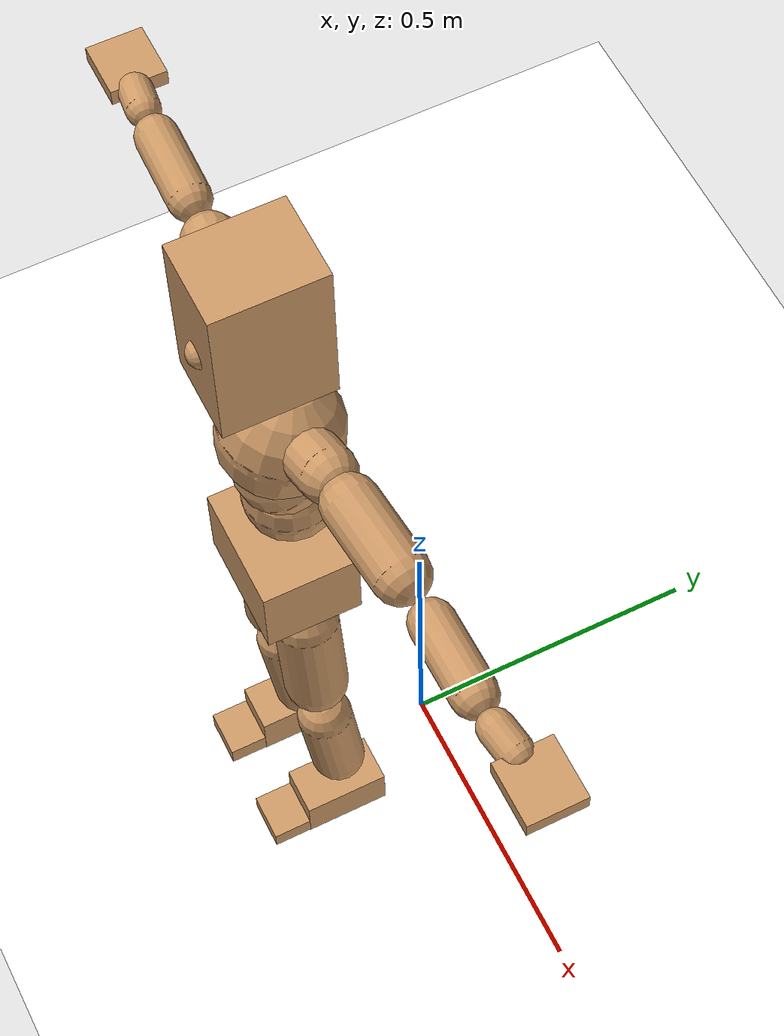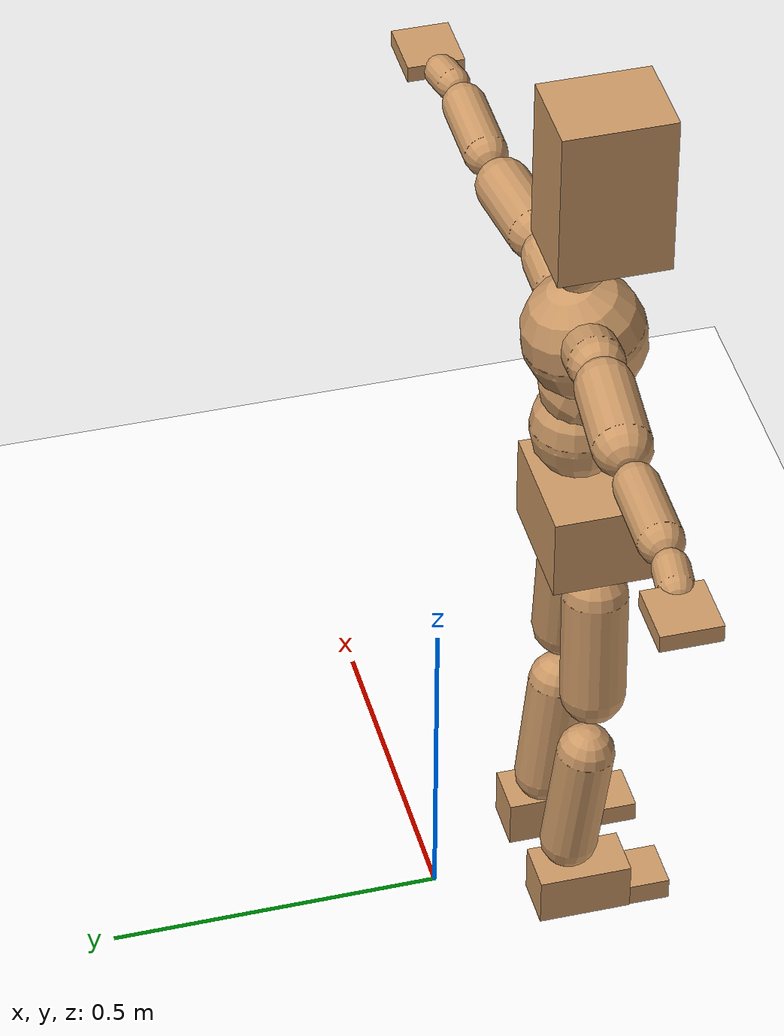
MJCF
<mujoco model="humanoid">
  <option integrator="implicitfast" />

  <visual>
    <global offwidth="1280" offheight="960" />
    <headlight active="1" ambient="0.34 0.34 0.34" diffuse="0.5 0.5 0.5" />
  </visual>

  <default>
    <joint damping="2" stiffness="2" armature="0.01" limited="true" solimplimit="0 .99 .01" />
    <geom condim="1" friction="0.7 0.005 0.0001" solimp=".99 .99 .003" solref="0.015 1" margin="0.001" rgba="0.8 0.6 .4 1" />
    <default class="smplcontact">
      <geom condim="3" friction="1. 0.005 0.0001" solref="0.015 1" solimp="0.98 0.98 0.001" priority="1" />
    </default>
    <default class="stiff_medium">
      <joint stiffness="10" />
    </default>
    <default class="stiff_medium_higher">
      <joint stiffness="50" />
    </default>
    <default class="stiff_high">
      <joint stiffness="100" />
    </default>
  </default>

  <asset>
    <texture type="skybox" builtin="gradient" rgb1="0.99 0.99 0.99" rgb2="0.608 0.828 0.892" width="100" />
    <texture builtin="flat" height="1278" mark="cross" markrgb="1 1 1" name="texgeom" random="0.01" rgb1="0.8 0.6 0.4" rgb2="0.8 0.6 0.4" type="cube" width="127" />
    <texture name="texplane" type="2d" builtin="checker" markrgb="1 1 1" rgb1="0.756 0.772 0.76" rgb2="0.6 0.6 0.6" width="100" height="100" />
    <material name="MatPlane" reflectance="0.5" texture="texplane" texrepeat="1 1" texuniform="true" />
    <material name="geom" texture="texgeom" texuniform="true" />
  </asset>

  <worldbody>
    <light name="tracking_light" pos="0 0 7" dir="0 0 -1" directional="true" cutoff="100" exponent="1" diffuse="1 1 1" specular="0.1 0.1 0.1" mode="trackcom" />
    <camera name="back" pos="0 3 2.4" xyaxes="-1 0 0 0 -1 2" mode="trackcom" />
    <camera name="side" pos="-3 0 2.4" xyaxes="0 -1 0 1 0 2" mode="trackcom" />
    <camera name="front_side" pos="-2.8 -2.8 0.8" xyaxes="0.5 -0.5 0 0.1 0.1 1" mode="trackcom" />
    <geom condim="3" name="floor" pos="0 0 0" rgba="1 1 1 1" size="100 100 .2" type="plane" material="MatPlane" />
    <body name="Pelvis" pos="-0.0018 -0.2233 0.716624" euler="90 0 0">
      <site name="Pelvis" size="0.01" />
      <freejoint name="Pelvis" />
      <geom type="box" pos="-0.0000 -0.0121 -0.0055" size="0.0968728 0.0654276 0.0752146" quat="1.0000 0.0000 0.0000 0.0000" density="3165.830099" name="Pelvis" />
      <body name="L_Hip" pos="0.0529937 -0.0696925 -0.005185">
        <joint name="L_Hip_x" type="hinge" pos="0 0 0" axis="1 0 0" stiffness="3.9214625000000005" range="-160.0 22.92" class="stiff_medium" damping="5.1597762005900805" armature="0.0030173879079468504"/>
        <joint name="L_Hip_y" type="hinge" pos="0 0 0" axis="0 1 0" stiffness="3.9279813000000003" range="-70.0 70.0" class="stiff_medium" damping="3.5718430799567584" armature="0.003247994838426288"/>
        <joint name="L_Hip_z" type="hinge" pos="0 0 0" axis="0 0 1" stiffness="3.9266735999999995" range="-28.65 90.0" class="stiff_medium" damping="3.4419389690719715" armature="0.003017043195751291"/>
        <geom type="capsule" density="2040.816327" fromto="0.00526125 -0.0571875 -0.00068625 0.0208925 -0.228903 -0.002745" size="0.0499687" name="L_Hip" />
        <body name="L_Knee" pos="0.0261537 -0.28609 -0.00343125">
          <joint name="L_Knee_x" type="hinge" pos="0 0 0" axis="1 0 0" range="-5.16 171.89" damping="2.779055997264303" armature="0.003055540941866403" stiffness="0.78987162"/>
          <joint name="L_Knee_y" type="hinge" pos="0 0 0" axis="0 1 0" range="-4.58 6.88" damping="2.876861501482273" armature="0.0032886345952017437" stiffness="0.7864521600000001"/>
          <joint name="L_Knee_z" type="hinge" pos="0 0 0" axis="0 0 1" range="-6.88 4.58" damping="2.7820708840275157" armature="0.0030538414317112733" stiffness="0.7920268800000001"/>
          <geom type="capsule" density="1234.567901" fromto="-0.00205875 -0.060695 -0.00663375 -0.00831125 -0.24278 -0.0266875" size="0.0439563" name="L_Knee" />
          <body name="L_Ankle" pos="-0.01037 -0.303475 -0.0333212">
            <joint name="L_Ankle_x" type="hinge" pos="0 0 0" axis="1 0 0" range="-45.84 45.84" class="stiff_medium" damping="2.1919054100191886" armature="0.0032631036516578937" stiffness="4.089877"/>
            <joint name="L_Ankle_y" type="hinge" pos="0 0 0" axis="0 1 0" range="-74.48 22.92" class="stiff_medium" damping="1.0976876200555323" armature="0.0032734403042531286" stiffness="4.089880299999999"/>
            <joint name="L_Ankle_z" type="hinge" pos="0 0 0" axis="0 0 1" range="-4.58 4.58" class="stiff_medium" damping="2.2179514456621963" armature="0.0033411088163127316" stiffness="4.089883599999999"/>
            <geom type="box" pos="0.0177663 -0.0182238 0.0184525" size="0.0392438 0.0377 0.0690625" quat="1.0000 0.0000 0.0000 0.0000" density="449.071558" name="L_Ankle" class="smplcontact" />
            <body name="L_Toe" pos="0.02013 -0.0425475 0.0909662">
              <joint name="L_Toe_x" type="hinge" pos="0 0 0" axis="1 0 0" range="-91.67 22.92" armature="0.0033803365718881183" damping="0.7436442223096881" stiffness="0.8179758399999999"/>
              <joint name="L_Toe_y" type="hinge" pos="0 0 0" axis="0 1 0" range="-4.58 4.58" armature="0.0034277794523945816" damping="0.7488444278599581" stiffness="0.8179755799999998"/>
              <joint name="L_Toe_z" type="hinge" pos="0 0 0" axis="0 0 1" range="-4.58 4.58" armature="0.003523704954170559" damping="0.7592495026251527" stiffness="0.8179739999999999"/>
              <geom type="box" pos="-0.0022875 0.00419375 0.01891" size="0.0388375 0.01625 0.0403" quat="1.0000 0.0000 0.0000 0.0000" density="423.206892" name="L_Toe" class="smplcontact" />
            </body>
          </body>
        </body>
      </body>
      <body name="R_Hip" pos="-0.0516212 -0.0690062 -0.00327875">
        <joint name="R_Hip_x" type="hinge" pos="0 0 0" axis="1 0 0" stiffness="3.9214625000000005" range="-160.0 22.92" class="stiff_medium" damping="5.1597762005900805" armature="0.0030173879079468504"/>
        <joint name="R_Hip_y" type="hinge" pos="0 0 0" axis="0 1 0" stiffness="3.9279813000000003" range="-70.0 70.0" class="stiff_medium" damping="3.5718430799567584" armature="0.003247994838426288"/>
        <joint name="R_Hip_z" type="hinge" pos="0 0 0" axis="0 0 1" stiffness="3.9266735999999995" range="-90.0 28.65" class="stiff_medium" damping="3.4419389690719715" armature="0.003017043195751291"/>
        <geom type="capsule" density="2040.816327" fromto="-0.00587125 -0.0583312 -0.0013725 -0.0233325 -0.233401 -0.00541375" size="0.0492375" name="R_Hip" />
        <body name="R_Knee" pos="-0.0292038 -0.291733 -0.00678625">
          <joint name="R_Knee_x" type="hinge" pos="0 0 0" axis="1 0 0" range="-5.16 171.89" damping="2.779055997264303" armature="0.003055540941866403" stiffness="0.78987162"/>
          <joint name="R_Knee_y" type="hinge" pos="0 0 0" axis="0 1 0" range="-6.88 4.58" damping="2.876861501482273" armature="0.0032886345952017437" stiffness="0.7864521600000001"/>
          <joint name="R_Knee_z" type="hinge" pos="0 0 0" axis="0 0 1" range="-4.58 6.88" damping="2.7820708840275157" armature="0.0030538414317112733" stiffness="0.7920268800000001"/>
          <geom type="capsule" density="1234.567901" fromto="0.00244 -0.0607712 -0.00648125 0.0096075 -0.243009 -0.0257725" size="0.0439563" name="R_Knee" />
          <body name="R_Ankle" pos="0.0120475 -0.30378 -0.0322537">
            <joint name="R_Ankle_x" type="hinge" pos="0 0 0" axis="1 0 0" range="-45.84 45.84" class="stiff_medium" damping="2.1919054100191886" armature="0.0032631036516578937" stiffness="4.089877"/>
            <joint name="R_Ankle_y" type="hinge" pos="0 0 0" axis="0 1 0" range="-22.92 74.48" class="stiff_medium" damping="1.0976876200555323" armature="0.0032734403042531286" stiffness="4.089880299999999"/>
            <joint name="R_Ankle_z" type="hinge" pos="0 0 0" axis="0 0 1" range="-4.58 4.58" class="stiff_medium" damping="2.2179514456621963" armature="0.0033411088163127316" stiffness="4.089883599999999"/>
            <geom type="box" pos="-0.016165 -0.0132675 0.01952" size="0.0392438 0.0388375 0.0702812" quat="1.0000 0.0000 0.0000 0.0000" density="434.700981" name="R_Ankle" class="smplcontact" />
            <body name="R_Toe" pos="-0.0193675 -0.0366762 0.0940162">
              <joint name="R_Toe_x" type="hinge" pos="0 0 0" axis="1 0 0" range="-91.67 22.92" armature="0.0033803365718881183" damping="0.7436442223096881" stiffness="0.8179758399999999"/>
              <joint name="R_Toe_y" type="hinge" pos="0 0 0" axis="0 1 0" range="-4.58 4.58" armature="0.0034277794523945816" damping="0.7488444278599581" stiffness="0.8179755799999998"/>
              <joint name="R_Toe_z" type="hinge" pos="0 0 0" axis="0 0 1" range="-4.58 4.58" armature="0.003523704954170559" damping="0.7592495026251527" stiffness="0.8179739999999999"/>
              <geom type="box" pos="0.0032025 0.00343125 0.0173088" size="0.0389188 0.01755 0.0400562" quat="1.0000 0.0000 0.0000 0.0000" density="407.384095" name="R_Toe" class="smplcontact" />
            </body>
          </body>
        </body>
      </body>
      <body name="Torso" pos="-0.0021095 0.0919742 -0.0225295">
        <joint name="Torso_x" type="hinge" pos="0 0 0" axis="1 0 0" range="-25.78 57.3" class="stiff_medium" damping="10.577258012093274" armature="0.006904570092515205" stiffness="7.2015675"/>
        <joint name="Torso_y" type="hinge" pos="0 0 0" axis="0 1 0" range="-57.3 57.3" class="stiff_high" damping="10.129493129551967" armature="0.0034222465397277624" stiffness="74.95561020408162"/>
        <joint name="Torso_z" type="hinge" pos="0 0 0" axis="0 0 1" range="-34.38 34.38" class="stiff_high" damping="12.711820879686218" armature="0.005697958674021908" stiffness="70.89836875"/>
        <geom type="capsule" density="2040.816327" fromto="0.0021095 0.051303 0.0004219 0.0025314 0.0626943 0.00050628" size="0.0696868" name="Torso" />
        <body name="Spine" pos="0.0046409 0.114082 0.00092818">
          <joint name="Spine_x" type="hinge" pos="0 0 0" axis="1 0 0" stiffness="7.4422838" range="-25.78 57.3" class="stiff_medium" damping="11.567419134205927" armature="0.007990688463213307"/>
          <joint name="Spine_y" type="hinge" pos="0 0 0" axis="0 1 0" stiffness="7.820228181818183" range="-57.3 57.3" class="stiff_high" damping="4.126954384192684" armature="0.00340298424108119"/>
          <joint name="Spine_z" type="hinge" pos="0 0 0" axis="0 0 1" stiffness="15.870546222222224" range="-34.38 34.38" class="stiff_high" damping="7.889511611505526" armature="0.005447231952382052"/>
          <geom type="capsule" density="2040.816327" fromto="0.00059066 0.0200824 0.00961932 0.00067504 0.0245546 0.0118132" size="0.0684181" name="Spine" />
          <body name="Chest" pos="0.0012657 0.044637 0.0214325">
            <joint name="Chest_x" type="hinge" pos="0 0 0" axis="1 0 0" stiffness="7.979542558139535" range="-25.78 57.3" class="stiff_medium" damping="12.413924505472188" armature="0.008583367084836072"/>
            <joint name="Chest_y" type="hinge" pos="0 0 0" axis="0 1 0" stiffness="7.157162692307692" range="-57.3 57.3" class="stiff_high" damping="3.9311004580490834" armature="0.0033737074565269804"/>
            <joint name="Chest_z" type="hinge" pos="0 0 0" axis="0 0 1" stiffness="16.578240487804877" range="-34.38 34.38" class="stiff_high" damping="7.915635023672763" armature="0.00524929029997737"/>
            <geom type="capsule" density="2040.816327" fromto="-0.00075942 0.0575472 -0.0145977 -0.0008438 0.0702885 -0.0178886" size="0.0908012" name="Chest" />
            <body name="Neck" pos="-0.00236264 0.180489 -0.036199">
              <joint name="Neck_x" type="hinge" pos="0 0 0" axis="1 0 0" range="-28.65 57.3" class="stiff_medium_higher" damping="13.55561732579099" armature="0.014136356199346856" stiffness="64.99367959183672"/>
              <joint name="Neck_y" type="hinge" pos="0 0 0" axis="0 1 0" range="-40.11 40.11" class="stiff_medium_higher" damping="13.792446993211637" armature="0.01457266759645728" stiffness="65.26999699999999"/>
              <joint name="Neck_z" type="hinge" pos="0 0 0" axis="0 0 1" range="-40.11 40.11" class="stiff_medium_higher" damping="13.685552764196004" armature="0.014152711503354256" stiffness="66.16907099999999"/>
              <geom type="capsule" density="1000" fromto="0.0008438 0.0109694 0.00869114 0.00345958 0.0438776 0.0346802" size="0.0395103" name="Neck" />
              <body name="Head" pos="0.00536224 0.067028 0.0529006">
                <joint name="Head_x" type="hinge" pos="0 0 0" axis="1 0 0" range="-28.65 57.3" class="stiff_medium_higher" damping="2.816621340013433" armature="0.014697337086109404" stiffness="67.472731"/>
                <joint name="Head_y" type="hinge" pos="0 0 0" axis="0 1 0" range="-40.11 40.11" class="stiff_medium_higher" damping="2.8996056421846865" armature="0.015576134886874772" stiffness="67.47271500000001"/>
                <joint name="Head_z" type="hinge" pos="0 0 0" axis="0 0 1" range="-40.11 40.11" class="stiff_medium_higher" damping="2.8124493462793527" armature="0.014653825882704061" stiffness="67.47274900000002"/>
                <geom type="box" pos="-0.00433104 0.0903331 -0.0119619" size="0.0662843 0.126225 0.0831288" quat="1.0000 0.0000 0.0000 0.0000" density="1018.069894" name="Head" />
                <geom type="capsule" name="nose" size="0.021876 0.010938" pos="0 0.072184 0.05156" quat="1 0 0 0" mass="0" contype="0" conaffinity="0" />
              </body>
            </body>
            <body name="L_Thorax" pos="0.0615586 0.095072 -0.0266389">
              <joint name="L_Thorax_x" type="hinge" pos="0 0 0" axis="1 0 0" range="-10.89 4.58" class="stiff_medium_higher" damping="7.366703641788815" armature="0.003315867709050664" stiffness="20.4578135"/>
              <joint name="L_Thorax_y" type="hinge" pos="0 0 0" axis="0 1 0" range="-28.65 17.19" class="stiff_medium_higher" damping="7.2389737977142214" armature="0.003204940921472673" stiffness="20.438263500000005"/>
              <joint name="L_Thorax_z" type="hinge" pos="0 0 0" axis="0 0 1" range="-31.51 40.11" class="stiff_medium_higher" damping="7.238926075629938" armature="0.0032048407254312863" stiffness="20.438633"/>
              <geom type="capsule" density="1000" fromto="0.0142178 0.00476532 -0.00140616 0.0568714 0.0190613 -0.00554652" size="0.0423313" name="L_Thorax" />
              <body name="L_Shoulder" pos="0.0710892 0.0238266 -0.00695268">
                <joint name="L_Shoulder_x" type="hinge" pos="0 0 0" axis="1 0 0" range="-97.4 97.4" class="stiff_medium" damping="2.2249706482116145" armature="0.0033592827176513406" stiffness="4.0935445"/>
                <joint name="L_Shoulder_y" type="hinge" pos="0 0 0" axis="0 1 0" range="-108.86 80.21" class="stiff_medium" damping="2.173506522388867" armature="0.003208843563981503" stiffness="4.089506"/>
                <joint name="L_Shoulder_z" type="hinge" pos="0 0 0" axis="0 0 1" range="-97.4 85.94" class="stiff_medium" damping="2.1734306090385074" armature="0.0032087133386041987" stiffness="4.0893863"/>
                <geom type="capsule" density="1000" fromto="0.0405443 -0.00203112 -0.0042966 0.162255 -0.00796824 -0.0171864" size="0.0420063" name="L_Shoulder" />
                <body name="L_Elbow" pos="0.2028 -0.00999936 -0.021483">
                  <joint name="L_Elbow_x" type="hinge" pos="0 0 0" axis="1 0 0" range="-17.19 4.58" damping="1.8761213185221104" armature="0.003428779783230469" stiffness="0.8212440399999998"/>
                  <joint name="L_Elbow_y" type="hinge" pos="0 0 0" axis="0 1 0" range="-180.0 17.19" damping="1.8203181178891994" armature="0.0032278666635484577" stiffness="0.8212379"/>
                  <joint name="L_Elbow_z" type="hinge" pos="0 0 0" axis="0 0 1" range="-100.84 4.58" damping="1.8202229392180926" armature="0.0032271833912802085" stiffness="0.8213258800000001"/>
                  <geom type="capsule" density="1000" fromto="0.0389038 0.00140616 -0.00015624 0.155771 0.00562464 -0.00070308" size="0.0329062" name="L_Elbow" />
                  <body name="L_Wrist" pos="0.194675 0.0070308 -0.00093744">
                    <joint name="L_Wrist_x" type="hinge" pos="0 0 0" axis="1 0 0" range="-180.0 22.92" armature="0.0034495366825363794" damping="0.7577185730234363" stiffness="0.832195"/>
                    <joint name="L_Wrist_y" type="hinge" pos="0 0 0" axis="0 1 0" range="-17.19 17.19" armature="0.003292918145710952" damping="0.739941640809656" stiffness="0.8313502"/>
                    <joint name="L_Wrist_z" type="hinge" pos="0 0 0" axis="0 0 1" range="-22.92 22.92" armature="0.003284171570240499" damping="0.7390792704853067" stiffness="0.83162246"/>
                    <geom type="capsule" density="1000" fromto="0.0131242 -0.00124992 -0.0023436 0.0524966 -0.0050778 -0.0093744" size="0.0258375" name="L_Wrist" class="smplcontact" />
                    <body name="L_Hand" pos="0.0656208 -0.00640584 -0.0116399">
                      <joint name="L_Hand_x" type="hinge" pos="0 0 0" axis="1 0 0" range="-17.19 17.19" armature="0.0035292731869483117" damping="0.7691109683277436" stiffness="0.8380361199999999"/>
                      <joint name="L_Hand_y" type="hinge" pos="0 0 0" axis="0 1 0" range="-51.57 51.57" armature="0.0033999615192095356" damping="0.7548896681887669" stiffness="0.8380365599999999"/>
                      <joint name="L_Hand_z" type="hinge" pos="0 0 0" axis="0 0 1" range="-91.67 91.67" armature="0.0033654916605397336" damping="0.7510534647711488" stiffness="0.8380369999999999"/>
                      <geom type="box" pos="0.0385132 0.0007812 -0.00453096" size="0.0475313 0.0128375 0.0437125" quat="1.0000 0.0000 0.0000 0.0000" density="400.552564" name="L_Hand" class="smplcontact" />
                    </body>
                  </body>
                </body>
              </body>
            </body>
            <body name="R_Thorax" pos="-0.0639022 0.0928066 -0.0301543">
              <joint name="R_Thorax_x" type="hinge" pos="0 0 0" axis="1 0 0" range="-10.89 4.58" class="stiff_medium_higher" damping="7.366703641788815" armature="0.003315867709050664" stiffness="20.4578135"/>
              <joint name="R_Thorax_y" type="hinge" pos="0 0 0" axis="0 1 0" range="-17.19 28.65" class="stiff_medium_higher" damping="7.2389737977142214" armature="0.003204940921472673" stiffness="20.438263500000005"/>
              <joint name="R_Thorax_z" type="hinge" pos="0 0 0" axis="0 0 1" range="-40.11 31.51" class="stiff_medium_higher" damping="7.238926075629938" armature="0.0032048407254312863" stiffness="20.438633"/>
              <geom type="capsule" density="1000" fromto="-0.014999 0.0050778 -0.00140616 -0.0599962 0.0203112 -0.00570276" size="0.0415188" name="R_Thorax" />
              <body name="R_Shoulder" pos="-0.0749952 0.0254671 -0.00710892">
                <joint name="R_Shoulder_x" type="hinge" pos="0 0 0" axis="1 0 0" range="-97.4 97.4" class="stiff_medium" damping="2.2249706482116145" armature="0.0033592827176513406" stiffness="4.0935445"/>
                <joint name="R_Shoulder_y" type="hinge" pos="0 0 0" axis="0 1 0" range="-80.21 108.86" class="stiff_medium" damping="2.173506522388867" armature="0.003208843563981503" stiffness="4.089506"/>
                <joint name="R_Shoulder_z" type="hinge" pos="0 0 0" axis="0 0 1" range="-85.94 97.4" class="stiff_medium" damping="2.1734306090385074" armature="0.0032087133386041987" stiffness="4.0893863"/>
                <geom type="capsule" density="1000" fromto="-0.0396068 -0.00210924 -0.00335916 -0.158584 -0.00835884 -0.0133585" size="0.0431438" name="R_Shoulder" />
                <body name="R_Elbow" pos="-0.19819 -0.01039 -0.0167177">
                  <joint name="R_Elbow_x" type="hinge" pos="0 0 0" axis="1 0 0" range="-17.19 4.58" damping="1.8761213185221104" armature="0.003428779783230469" stiffness="0.8212440399999998"/>
                  <joint name="R_Elbow_y" type="hinge" pos="0 0 0" axis="0 1 0" range="-17.19 180.0" damping="1.8203181178891994" armature="0.0032278666635484577" stiffness="0.8212379"/>
                  <joint name="R_Elbow_z" type="hinge" pos="0 0 0" axis="0 0 1" range="-4.58 100.84" damping="1.8202229392180926" armature="0.0032271833912802085" stiffness="0.8213258800000001"/>
                  <geom type="capsule" density="1000" fromto="-0.0399193 0.00124992 -0.00085932 -0.159521 0.00484344 -0.00343728" size="0.03315" name="R_Elbow" />
                  <body name="R_Wrist" pos="-0.19944 0.00609336 -0.00437472">
                    <joint name="R_Wrist_x" type="hinge" pos="0 0 0" axis="1 0 0" range="-180.0 22.92" armature="0.0034495366825363794" damping="0.7577185730234363" stiffness="0.832195"/>
                    <joint name="R_Wrist_y" type="hinge" pos="0 0 0" axis="0 1 0" range="-17.19 17.19" armature="0.003292918145710952" damping="0.739941640809656" stiffness="0.8313502"/>
                    <joint name="R_Wrist_z" type="hinge" pos="0 0 0" axis="0 0 1" range="-22.92 22.92" armature="0.003284171570240499" damping="0.7390792704853067" stiffness="0.83162246"/>
                    <geom type="capsule" density="1000" fromto="-0.0132023 -0.00093744 -0.00164052 -0.0528872 -0.00382788 -0.00648396" size="0.0264875" name="R_Wrist" class="smplcontact" />
                    <body name="R_Hand" pos="-0.0660895 -0.00476532 -0.00804636">
                      <joint name="R_Hand_x" type="hinge" pos="0 0 0" axis="1 0 0" range="-17.19 17.19" armature="0.0035292731869483117" damping="0.7691109683277436" stiffness="0.8380361199999999"/>
                      <joint name="R_Hand_y" type="hinge" pos="0 0 0" axis="0 1 0" range="-51.57 51.57" armature="0.0033999615192095356" damping="0.7548896681887669" stiffness="0.8380365599999999"/>
                      <joint name="R_Hand_z" type="hinge" pos="0 0 0" axis="0 0 1" range="-91.67 91.67" armature="0.0033654916605397336" damping="0.7510534647711488" stiffness="0.8380369999999999"/>
                      <geom type="box" pos="-0.0360914 -0.00070308 -0.00617148" size="0.0462313 0.013325 0.0443625" quat="1.0000 0.0000 0.0000 0.0000" density="403.679611" name="R_Hand" class="smplcontact" />
                    </body>
                  </body>
                </body>
              </body>
            </body>
          </body>
        </body>
      </body>
    </body>
  </worldbody>
  <actuator>
    <general name="L_Hip_x" joint="L_Hip_x" biastype="affine" gainprm="112.67540714802465" biasprm="-84.43879735322118 -70.586325 -0.6879701600786774" ctrllimited="true" ctrlrange="-1 1" forcerange="-141.17265 141.17265" />
    <general name="L_Hip_y" joint="L_Hip_y" biastype="affine" gainprm="86.3808203686266" biasprm="0.0 -70.70366340000001 -0.7143686159913517" ctrllimited="true" ctrlrange="-1 1" forcerange="-141.40732680000002 141.40732680000002" />
    <general name="L_Hip_z" joint="L_Hip_z" biastype="affine" gainprm="73.18337300573057" biasprm="37.84070740751429 -70.68012479999999 -0.6883877938143943" ctrllimited="true" ctrlrange="-1 1" forcerange="-141.36024959999997 141.36024959999997" />
    <general name="L_Knee_x" joint="L_Knee_x" biastype="affine" gainprm="109.83539656717818" biasprm="103.43324298020681 -71.0884458 -0.6947639993160758" ctrllimited="true" ctrlrange="-1 1" forcerange="-142.1768916 142.1768916" />
    <general name="L_Knee_y" joint="L_Knee_y" biastype="affine" gainprm="7.078590820452938" biasprm="1.4206595887470992 -70.7806944 -0.7192153753705682" ctrllimited="true" ctrlrange="-1 1" forcerange="-141.5613888 141.5613888" />
    <general name="L_Knee_z" joint="L_Knee_z" biastype="affine" gainprm="7.128766996227693" biasprm="-1.430729850900846 -71.2824192 -0.6955177210068789" ctrllimited="true" ctrlrange="-1 1" forcerange="-142.5648384 142.5648384" />
    <general name="L_Ankle_x" joint="L_Ankle_x" biastype="affine" gainprm="29.449283515459204" biasprm="0.0 -36.808893 -0.7306351366730629" ctrllimited="true" ctrlrange="-1 1" forcerange="-73.617786 73.617786" />
    <general name="L_Ankle_y" joint="L_Ankle_y" biastype="affine" gainprm="31.286676797558844" biasprm="-16.562023158954148 -36.8089227 -0.7317917467036883" ctrllimited="true" ctrlrange="-1 1" forcerange="-73.6178454 73.6178454" />
    <general name="L_Ankle_z" joint="L_Ankle_z" biastype="affine" gainprm="2.9423633542415986" biasprm="0.0 -36.808952399999995 -0.7393171485540654" ctrllimited="true" ctrlrange="-1 1" forcerange="-73.61790479999999 73.61790479999999" />
    <general name="L_Toe_x" joint="L_Toe_x" biastype="affine" gainprm="29.44672960973623" biasprm="-17.667009867085834 -29.447130239999996 -0.29745768892387525" ctrllimited="true" ctrlrange="-1 1" forcerange="-58.89426047999999 58.89426047999999" />
    <general name="L_Toe_y" joint="L_Toe_y" biastype="affine" gainprm="2.353887402816566" biasprm="0.0 -29.447120879999993 -0.2995377711439832" ctrllimited="true" ctrlrange="-1 1" forcerange="-58.894241759999986 58.894241759999986" />
    <general name="L_Toe_z" joint="L_Toe_z" biastype="affine" gainprm="2.353882856052351" biasprm="0.0 -29.447063999999994 -0.3036998010500611" ctrllimited="true" ctrlrange="-1 1" forcerange="-58.89412799999999 58.89412799999999" />
    <general name="R_Hip_x" joint="R_Hip_x" biastype="affine" gainprm="112.67540714802465" biasprm="-84.43879735322118 -70.586325 -0.6879701600786774" ctrllimited="true" ctrlrange="-1 1" forcerange="-141.17265 141.17265" />
    <general name="R_Hip_y" joint="R_Hip_y" biastype="affine" gainprm="86.3808203686266" biasprm="0.0 -70.70366340000001 -0.7143686159913517" ctrllimited="true" ctrlrange="-1 1" forcerange="-141.40732680000002 141.40732680000002" />
    <general name="R_Hip_z" joint="R_Hip_z" biastype="affine" gainprm="73.18337300573057" biasprm="-37.84070740751429 -70.68012479999999 -0.6883877938143943" ctrllimited="true" ctrlrange="-1 1" forcerange="-141.36024959999997 141.36024959999997" />
    <general name="R_Knee_x" joint="R_Knee_x" biastype="affine" gainprm="109.83539656717818" biasprm="103.43324298020681 -71.0884458 -0.6947639993160758" ctrllimited="true" ctrlrange="-1 1" forcerange="-142.1768916 142.1768916" />
    <general name="R_Knee_y" joint="R_Knee_y" biastype="affine" gainprm="7.078590820452938" biasprm="-1.4206595887470992 -70.7806944 -0.7192153753705682" ctrllimited="true" ctrlrange="-1 1" forcerange="-141.5613888 141.5613888" />
    <general name="R_Knee_z" joint="R_Knee_z" biastype="affine" gainprm="7.128766996227693" biasprm="1.430729850900846 -71.2824192 -0.6955177210068789" ctrllimited="true" ctrlrange="-1 1" forcerange="-142.5648384 142.5648384" />
    <general name="R_Ankle_x" joint="R_Ankle_x" biastype="affine" gainprm="29.449283515459204" biasprm="0.0 -36.808893 -0.7306351366730629" ctrllimited="true" ctrlrange="-1 1" forcerange="-73.617786 73.617786" />
    <general name="R_Ankle_y" joint="R_Ankle_y" biastype="affine" gainprm="31.286676797558844" biasprm="16.562023158954148 -36.8089227 -0.7317917467036883" ctrllimited="true" ctrlrange="-1 1" forcerange="-73.6178454 73.6178454" />
    <general name="R_Ankle_z" joint="R_Ankle_z" biastype="affine" gainprm="2.9423633542415986" biasprm="0.0 -36.808952399999995 -0.7393171485540654" ctrllimited="true" ctrlrange="-1 1" forcerange="-73.61790479999999 73.61790479999999" />
    <general name="R_Toe_x" joint="R_Toe_x" biastype="affine" gainprm="29.44672960973623" biasprm="-17.667009867085834 -29.447130239999996 -0.29745768892387525" ctrllimited="true" ctrlrange="-1 1" forcerange="-58.89426047999999 58.89426047999999" />
    <general name="R_Toe_y" joint="R_Toe_y" biastype="affine" gainprm="2.353887402816566" biasprm="0.0 -29.447120879999993 -0.2995377711439832" ctrllimited="true" ctrlrange="-1 1" forcerange="-58.894241759999986 58.894241759999986" />
    <general name="R_Toe_z" joint="R_Toe_z" biastype="affine" gainprm="2.353882856052351" biasprm="0.0 -29.447063999999994 -0.3036998010500611" ctrllimited="true" ctrlrange="-1 1" forcerange="-58.89412799999999 58.89412799999999" />
    <general name="Torso_x" joint="Torso_x" biastype="affine" gainprm="125.3089633445107" biasprm="47.541388115298226 -172.83762000000002 -2.8206021365582066" ctrllimited="true" ctrlrange="-1 1" forcerange="-259.25643 259.25643" />
    <general name="Torso_y" joint="Torso_y" biastype="affine" gainprm="179.90671569293698" biasprm="0.0 -179.8934644897959 -2.0258986259103935" ctrllimited="true" ctrlrange="-1 1" forcerange="-269.84019673469385 269.84019673469385" />
    <general name="Torso_z" joint="Torso_z" biastype="affine" gainprm="102.10117136052368" biasprm="0.0 -170.156085 -2.5423641759372435" ctrllimited="true" ctrlrange="-1 1" forcerange="-255.2341275 255.2341275" />
    <general name="Spine_x" joint="Spine_x" biastype="affine" gainprm="129.49748341505455" biasprm="49.130484800704366 -178.61481120000002 -3.084645102454914" ctrllimited="true" ctrlrange="-1 1" forcerange="-267.9222168 267.9222168" />
    <general name="Spine_y" joint="Spine_y" biastype="affine" gainprm="187.69930153722444" biasprm="0.0 -187.68547636363638 -2.063477192096342" ctrllimited="true" ctrlrange="-1 1" forcerange="-281.5282145454546 281.5282145454546" />
    <general name="Spine_z" joint="Spine_z" biastype="affine" gainprm="114.27634993507684" biasprm="0.0 -190.44655466666669 -2.629837203835175" ctrllimited="true" ctrlrange="-1 1" forcerange="-285.66983200000004 285.66983200000004" />
    <general name="Chest_x" joint="Chest_x" biastype="affine" gainprm="138.8459117996006" biasprm="52.677216416988564 -191.50902139534884 -3.3103798681259167" ctrllimited="true" ctrlrange="-1 1" forcerange="-287.2635320930233 287.2635320930233" />
    <general name="Chest_y" joint="Chest_y" biastype="affine" gainprm="171.78455757311403" biasprm="0.0 -171.77190461538459 -1.9655502290245417" ctrllimited="true" ctrlrange="-1 1" forcerange="-257.6578569230769 257.6578569230769" />
    <general name="Chest_z" joint="Chest_z" biastype="affine" gainprm="119.3721239814377" biasprm="0.0 -198.93888585365852 -2.638545007890921" ctrllimited="true" ctrlrange="-1 1" forcerange="-298.40832878048775 298.40832878048775" />
    <general name="Neck_x" joint="Neck_x" biastype="affine" gainprm="35.099172243069546" biasprm="11.699724081023183 -46.79544930612244 -1.0844493860632791" ctrllimited="true" ctrlrange="-1 1" forcerange="-93.59089861224489 93.59089861224489" />
    <general name="Neck_y" joint="Neck_y" biastype="affine" gainprm="32.89850165895746" biasprm="0.0 -46.99439783999999 -1.103395759456931" ctrllimited="true" ctrlrange="-1 1" forcerange="-93.98879567999998 93.98879567999998" />
    <general name="Neck_z" joint="Neck_z" biastype="affine" gainprm="33.351668333387146" biasprm="0.0 -47.641731119999996 -1.0948442211356804" ctrllimited="true" ctrlrange="-1 1" forcerange="-95.28346223999999 95.28346223999999" />
    <general name="Head_x" joint="Head_x" biastype="affine" gainprm="24.291972408721737" biasprm="8.097324136240578 -32.38691088 -1.1266485360053733" ctrllimited="true" ctrlrange="-1 1" forcerange="-64.77382176 64.77382176" />
    <general name="Head_y" joint="Head_y" biastype="affine" gainprm="22.67250220507762" biasprm="0.0 -32.386903200000006 -1.1598422568738747" ctrllimited="true" ctrlrange="-1 1" forcerange="-64.77380640000001 64.77380640000001" />
    <general name="Head_z" joint="Head_z" biastype="affine" gainprm="22.672513629919134" biasprm="0.0 -32.386919520000006 -1.124979738511741" ctrllimited="true" ctrlrange="-1 1" forcerange="-64.77383904000001 64.77383904000001" />
    <general name="L_Thorax_x" joint="L_Thorax_x" biastype="affine" gainprm="6.628391358691353" biasprm="-2.703629571644632 -49.098752399999995 -0.5893362913431053" ctrllimited="true" ctrlrange="-1 1" forcerange="-98.19750479999999 98.19750479999999" />
    <general name="L_Thorax_y" joint="L_Thorax_y" biastype="affine" gainprm="19.62217825051663" biasprm="-4.905544562629157 -49.05183240000001 -0.5791179038171377" ctrllimited="true" ctrlrange="-1 1" forcerange="-98.10366480000002 98.10366480000002" />
    <general name="L_Thorax_z" joint="L_Thorax_z" biastype="affine" gainprm="30.65806747861631" biasprm="3.6813652655138265 -49.05271919999999 -0.579114086050395" ctrllimited="true" ctrlrange="-1 1" forcerange="-98.10543839999998 98.10543839999998" />
    <general name="L_Shoulder_x" joint="L_Shoulder_x" biastype="affine" gainprm="33.40235425548264" biasprm="0.0 -19.649013600000004 -0.5933255061897639" ctrllimited="true" ctrlrange="-1 1" forcerange="-39.29802720000001 39.29802720000001" />
    <general name="L_Shoulder_y" joint="L_Shoulder_y" biastype="affine" gainprm="32.38784731402933" biasprm="-4.907768686449147 -19.6296288 -0.5796017393036978" ctrllimited="true" ctrlrange="-1 1" forcerange="-39.2592576 39.2592576" />
    <general name="L_Shoulder_z" joint="L_Shoulder_z" biastype="affine" gainprm="31.405374313302516" biasprm="-1.9630500143473744 -19.629054240000002 -0.5795814957436021" ctrllimited="true" ctrlrange="-1 1" forcerange="-39.258108480000004 39.258108480000004" />
    <general name="L_Elbow_x" joint="L_Elbow_x" biastype="affine" gainprm="5.61669100672451" biasprm="-3.2533979602570557 -29.564785439999994 -0.3001794109635377" ctrllimited="true" ctrlrange="-1 1" forcerange="-59.12957087999999 59.12957087999999" />
    <general name="L_Elbow_y" joint="L_Elbow_y" biastype="affine" gainprm="50.874920487859626" biasprm="-42.0048978377627 -29.5645644 -0.2912508988622719" ctrllimited="true" ctrlrange="-1 1" forcerange="-59.1291288 59.1291288" />
    <general name="L_Elbow_z" joint="L_Elbow_z" biastype="affine" gainprm="27.201220580251373" biasprm="-24.837692022908346 -29.56773168 -0.29123567027489483" ctrllimited="true" ctrlrange="-1 1" forcerange="-59.13546336 59.13546336" />
    <general name="L_Wrist_x" joint="L_Wrist_x" biastype="affine" gainprm="8.841960655833763" biasprm="-6.844545534291186 -4.99317 -0.30308742920937454" ctrllimited="true" ctrlrange="-1 1" forcerange="-9.98634 9.98634" />
    <general name="L_Wrist_y" joint="L_Wrist_y" biastype="affine" gainprm="1.4965405891444725" biasprm="0.0 -4.9881012 -0.2959766563238624" ctrllimited="true" ctrlrange="-1 1" forcerange="-9.9762024 9.9762024" />
    <general name="L_Wrist_z" joint="L_Wrist_z" biastype="affine" gainprm="1.9960409243247517" biasprm="0.0 -4.989734759999999 -0.2956317081941227" ctrllimited="true" ctrlrange="-1 1" forcerange="-9.979469519999999 9.979469519999999" />
    <general name="L_Hand_x" joint="L_Hand_x" biastype="affine" gainprm="1.5085761316339947" biasprm="0.0 -5.02821672 -0.30764438733109745" ctrllimited="true" ctrlrange="-1 1" forcerange="-10.05643344 10.05643344" />
    <general name="L_Hand_y" joint="L_Hand_y" biastype="affine" gainprm="4.5257307710770025" biasprm="0.0 -5.02821936 -0.3019558672755068" ctrllimited="true" ctrlrange="-1 1" forcerange="-10.05643872 10.05643872" />
    <general name="L_Hand_z" joint="L_Hand_z" biastype="affine" gainprm="8.044870227042715" biasprm="0.0 -5.0282219999999995 -0.3004213859084595" ctrllimited="true" ctrlrange="-1 1" forcerange="-10.056443999999999 10.056443999999999" />
    <general name="R_Thorax_x" joint="R_Thorax_x" biastype="affine" gainprm="6.628391358691353" biasprm="-2.703629571644632 -49.098752399999995 -0.5893362913431053" ctrllimited="true" ctrlrange="-1 1" forcerange="-98.19750479999999 98.19750479999999" />
    <general name="R_Thorax_y" joint="R_Thorax_y" biastype="affine" gainprm="19.62217825051663" biasprm="4.905544562629154 -49.05183240000001 -0.5791179038171377" ctrllimited="true" ctrlrange="-1 1" forcerange="-98.10366480000002 98.10366480000002" />
    <general name="R_Thorax_z" joint="R_Thorax_z" biastype="affine" gainprm="30.65806747861631" biasprm="-3.6813652655138265 -49.05271919999999 -0.579114086050395" ctrllimited="true" ctrlrange="-1 1" forcerange="-98.10543839999998 98.10543839999998" />
    <general name="R_Shoulder_x" joint="R_Shoulder_x" biastype="affine" gainprm="33.40235425548264" biasprm="0.0 -19.649013600000004 -0.5933255061897639" ctrllimited="true" ctrlrange="-1 1" forcerange="-39.29802720000001 39.29802720000001" />
    <general name="R_Shoulder_y" joint="R_Shoulder_y" biastype="affine" gainprm="32.38784731402933" biasprm="4.907768686449147 -19.6296288 -0.5796017393036978" ctrllimited="true" ctrlrange="-1 1" forcerange="-39.2592576 39.2592576" />
    <general name="R_Shoulder_z" joint="R_Shoulder_z" biastype="affine" gainprm="31.405374313302516" biasprm="1.96305001434737 -19.629054240000002 -0.5795814957436021" ctrllimited="true" ctrlrange="-1 1" forcerange="-39.258108480000004 39.258108480000004" />
    <general name="R_Elbow_x" joint="R_Elbow_x" biastype="affine" gainprm="5.61669100672451" biasprm="-3.2533979602570557 -29.564785439999994 -0.3001794109635377" ctrllimited="true" ctrlrange="-1 1" forcerange="-59.12957087999999 59.12957087999999" />
    <general name="R_Elbow_y" joint="R_Elbow_y" biastype="affine" gainprm="50.874920487859626" biasprm="42.0048978377627 -29.5645644 -0.2912508988622719" ctrllimited="true" ctrlrange="-1 1" forcerange="-59.1291288 59.1291288" />
    <general name="R_Elbow_z" joint="R_Elbow_z" biastype="affine" gainprm="27.201220580251373" biasprm="24.837692022908342 -29.56773168 -0.29123567027489483" ctrllimited="true" ctrlrange="-1 1" forcerange="-59.13546336 59.13546336" />
    <general name="R_Wrist_x" joint="R_Wrist_x" biastype="affine" gainprm="8.841960655833763" biasprm="-6.844545534291186 -4.99317 -0.30308742920937454" ctrllimited="true" ctrlrange="-1 1" forcerange="-9.98634 9.98634" />
    <general name="R_Wrist_y" joint="R_Wrist_y" biastype="affine" gainprm="1.4965405891444725" biasprm="0.0 -4.9881012 -0.2959766563238624" ctrllimited="true" ctrlrange="-1 1" forcerange="-9.9762024 9.9762024" />
    <general name="R_Wrist_z" joint="R_Wrist_z" biastype="affine" gainprm="1.9960409243247517" biasprm="0.0 -4.989734759999999 -0.2956317081941227" ctrllimited="true" ctrlrange="-1 1" forcerange="-9.979469519999999 9.979469519999999" />
    <general name="R_Hand_x" joint="R_Hand_x" biastype="affine" gainprm="1.5085761316339947" biasprm="0.0 -5.02821672 -0.30764438733109745" ctrllimited="true" ctrlrange="-1 1" forcerange="-10.05643344 10.05643344" />
    <general name="R_Hand_y" joint="R_Hand_y" biastype="affine" gainprm="4.5257307710770025" biasprm="0.0 -5.02821936 -0.3019558672755068" ctrllimited="true" ctrlrange="-1 1" forcerange="-10.05643872 10.05643872" />
    <general name="R_Hand_z" joint="R_Hand_z" biastype="affine" gainprm="8.044870227042715" biasprm="0.0 -5.0282219999999995 -0.3004213859084595" ctrllimited="true" ctrlrange="-1 1" forcerange="-10.056443999999999 10.056443999999999" />
  </actuator>
  <contact>
    <exclude body1="Torso" body2="Chest" />
    <exclude body1="Head" body2="Chest" />
    <exclude body1="R_Knee" body2="R_Toe" />
    <exclude body1="R_Knee" body2="L_Ankle" />
    <exclude body1="R_Knee" body2="L_Toe" />
    <exclude body1="L_Knee" body2="L_Toe" />
    <exclude body1="L_Knee" body2="R_Ankle" />
    <exclude body1="L_Knee" body2="R_Toe" />
    <exclude body1="L_Shoulder" body2="Chest" />
    <exclude body1="R_Shoulder" body2="Chest" />
  </contact>
  <sensor>
    <framelinvel name="sensor_Pelvis_framelinvel" objtype="xbody" objname="Pelvis" />
    <framelinvel name="sensor_L_Hip_framelinvel" objtype="xbody" objname="L_Hip" />
    <framelinvel name="sensor_L_Knee_framelinvel" objtype="xbody" objname="L_Knee" />
    <framelinvel name="sensor_L_Ankle_framelinvel" objtype="xbody" objname="L_Ankle" />
    <framelinvel name="sensor_L_Toe_framelinvel" objtype="xbody" objname="L_Toe" />
    <framelinvel name="sensor_R_Hip_framelinvel" objtype="xbody" objname="R_Hip" />
    <framelinvel name="sensor_R_Knee_framelinvel" objtype="xbody" objname="R_Knee" />
    <framelinvel name="sensor_R_Ankle_framelinvel" objtype="xbody" objname="R_Ankle" />
    <framelinvel name="sensor_R_Toe_framelinvel" objtype="xbody" objname="R_Toe" />
    <framelinvel name="sensor_Torso_framelinvel" objtype="xbody" objname="Torso" />
    <framelinvel name="sensor_Spine_framelinvel" objtype="xbody" objname="Spine" />
    <framelinvel name="sensor_Chest_framelinvel" objtype="xbody" objname="Chest" />
    <framelinvel name="sensor_Neck_framelinvel" objtype="xbody" objname="Neck" />
    <framelinvel name="sensor_Head_framelinvel" objtype="xbody" objname="Head" />
    <framelinvel name="sensor_L_Thorax_framelinvel" objtype="xbody" objname="L_Thorax" />
    <framelinvel name="sensor_L_Shoulder_framelinvel" objtype="xbody" objname="L_Shoulder" />
    <framelinvel name="sensor_L_Elbow_framelinvel" objtype="xbody" objname="L_Elbow" />
    <framelinvel name="sensor_L_Wrist_framelinvel" objtype="xbody" objname="L_Wrist" />
    <framelinvel name="sensor_L_Hand_framelinvel" objtype="xbody" objname="L_Hand" />
    <framelinvel name="sensor_R_Thorax_framelinvel" objtype="xbody" objname="R_Thorax" />
    <framelinvel name="sensor_R_Shoulder_framelinvel" objtype="xbody" objname="R_Shoulder" />
    <framelinvel name="sensor_R_Elbow_framelinvel" objtype="xbody" objname="R_Elbow" />
    <framelinvel name="sensor_R_Wrist_framelinvel" objtype="xbody" objname="R_Wrist" />
    <framelinvel name="sensor_R_Hand_framelinvel" objtype="xbody" objname="R_Hand" />
    <frameangvel name="sensor_Pelvis_frameangvel" objtype="xbody" objname="Pelvis" />
    <frameangvel name="sensor_L_Hip_frameangvel" objtype="xbody" objname="L_Hip" />
    <frameangvel name="sensor_L_Knee_frameangvel" objtype="xbody" objname="L_Knee" />
    <frameangvel name="sensor_L_Ankle_frameangvel" objtype="xbody" objname="L_Ankle" />
    <frameangvel name="sensor_L_Toe_frameangvel" objtype="xbody" objname="L_Toe" />
    <frameangvel name="sensor_R_Hip_frameangvel" objtype="xbody" objname="R_Hip" />
    <frameangvel name="sensor_R_Knee_frameangvel" objtype="xbody" objname="R_Knee" />
    <frameangvel name="sensor_R_Ankle_frameangvel" objtype="xbody" objname="R_Ankle" />
    <frameangvel name="sensor_R_Toe_frameangvel" objtype="xbody" objname="R_Toe" />
    <frameangvel name="sensor_Torso_frameangvel" objtype="xbody" objname="Torso" />
    <frameangvel name="sensor_Spine_frameangvel" objtype="xbody" objname="Spine" />
    <frameangvel name="sensor_Chest_frameangvel" objtype="xbody" objname="Chest" />
    <frameangvel name="sensor_Neck_frameangvel" objtype="xbody" objname="Neck" />
    <frameangvel name="sensor_Head_frameangvel" objtype="xbody" objname="Head" />
    <frameangvel name="sensor_L_Thorax_frameangvel" objtype="xbody" objname="L_Thorax" />
    <frameangvel name="sensor_L_Shoulder_frameangvel" objtype="xbody" objname="L_Shoulder" />
    <frameangvel name="sensor_L_Elbow_frameangvel" objtype="xbody" objname="L_Elbow" />
    <frameangvel name="sensor_L_Wrist_frameangvel" objtype="xbody" objname="L_Wrist" />
    <frameangvel name="sensor_L_Hand_frameangvel" objtype="xbody" objname="L_Hand" />
    <frameangvel name="sensor_R_Thorax_frameangvel" objtype="xbody" objname="R_Thorax" />
    <frameangvel name="sensor_R_Shoulder_frameangvel" objtype="xbody" objname="R_Shoulder" />
    <frameangvel name="sensor_R_Elbow_frameangvel" objtype="xbody" objname="R_Elbow" />
    <frameangvel name="sensor_R_Wrist_frameangvel" objtype="xbody" objname="R_Wrist" />
    <frameangvel name="sensor_R_Hand_frameangvel" objtype="xbody" objname="R_Hand" />
    <subtreelinvel name="Chest_subtreelinvel" body="Chest" />
    <gyro name="Pelvis_gyro" site="Pelvis" />
  </sensor>
</mujoco>
